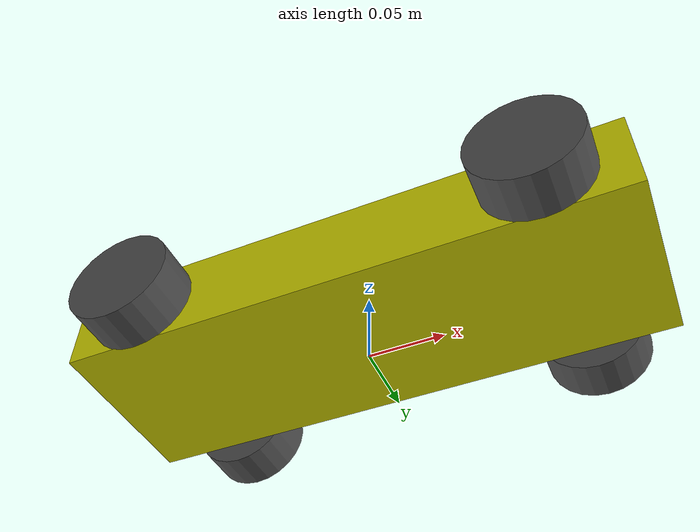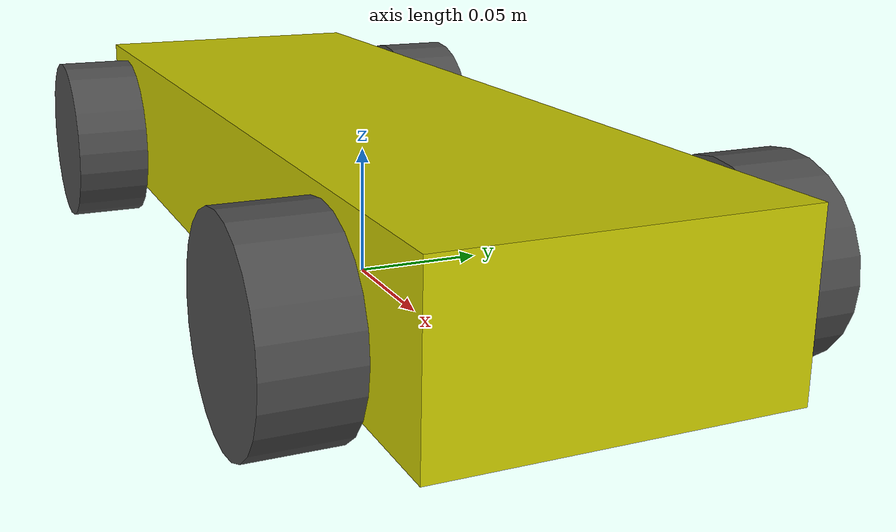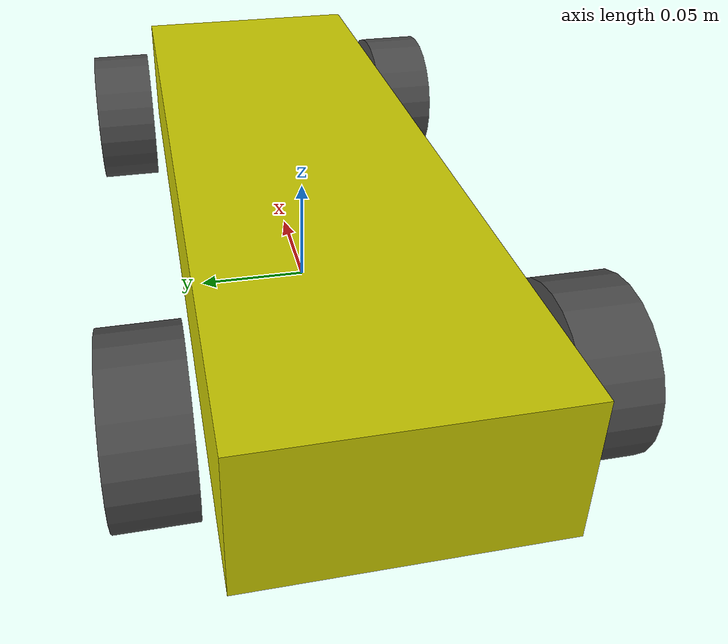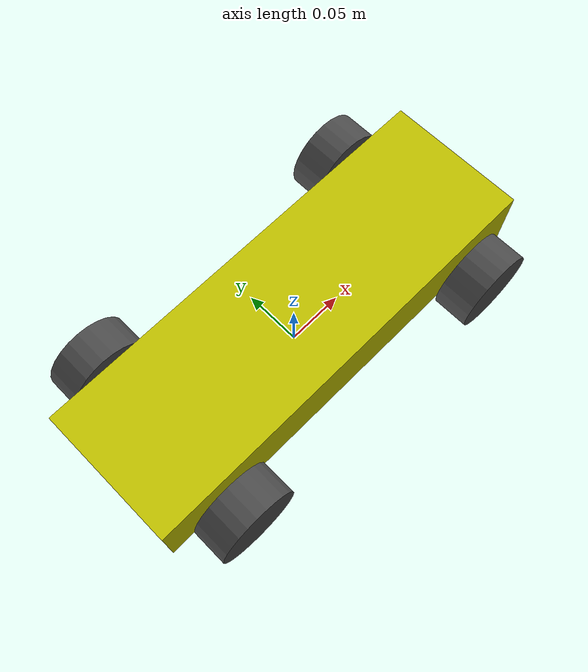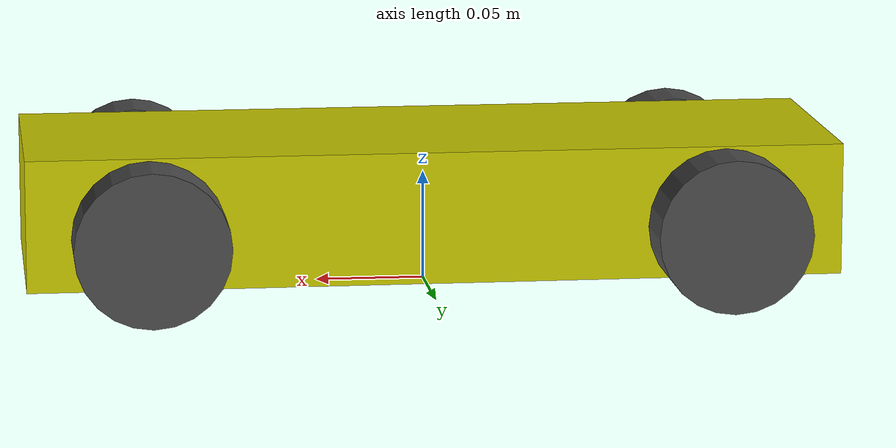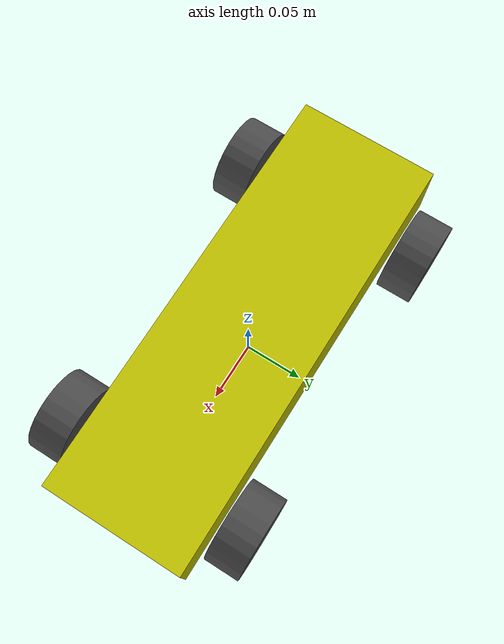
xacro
<?xml version="1.0"?>
<robot name="wheel_robot_base" xmlns:xacro="http://www.ros.org/wiki/xacro">

  <!-- Included URDF/XACRO Files -->
  <xacro:include filename="$(find tutorial2)/urdf/materials.urdf.xacro" />
  <xacro:include filename="$(find tutorial2)/urdf/wheel.urdf.xacro" />

  <!-- PROPERTY LIST -->
  <!--All units in m-kg-s-radians unit system -->
  <property name="M_PI" value="3.1415926535897931" />

  <!-- Main Body-base -->
  <property name="base_x_size" value="0.37" />
  <property name="base_y_size" value="0.12" />
  <property name="base_z_size" value="0.06" />
  <property name="base_mass" value="30.0" /> <!-- in kg-->

  <!--Inertial macros for the box and cylinder. Units are kg*m^2-->
  <macro name="box_inertia" params="m x y z">
    <inertia  ixx="${m*(y*y+z*z)/12}" ixy = "0" ixz = "0"
              iyy="${m*(x*x+z*z)/12}" iyz = "0"
              izz="${m*(x*x+z*z)/12}" />
  </macro>

  <!-- BASE-FOOTPRINT -->
  <!-- base_footprint is a fictitious link(frame) that is on the ground right below base_link origin -->
  <link name="base_footprint">
    <visual>
        <origin xyz="0 0 0" rpy="0 0 0" />
        <geometry>
            <box size="0.001 0.001 0.001" />
        </geometry>
    </visual>
  </link>

  <gazebo reference="base_footprint">
    <turnGravityOff>false</turnGravityOff>
  </gazebo>

  <!-- BASE-LINK -->
  <!--Actual body/chassis of the robot-->
  <link name="base_link">
    <inertial>
      <mass value="30.0" />
      <origin xyz="0 0 0" />
      <!--The 3x3 rotational inertia matrix. -->
      <box_inertia  m="${base_mass}" x="${base_x_size}" y="${base_y_size}" z="${base_z_size}"/>
    </inertial>
    <visual>
      <origin xyz="0 0 0" rpy="0 0 0" />
      <geometry>
        <box size="${base_x_size} ${base_y_size} ${base_z_size}"/>
      </geometry>
      <material name="Yellow" />
    </visual>
    <collision>
      <origin xyz="0 0 0" rpy="0 0 0 " />
      <geometry>
        <box size="${base_x_size} ${base_y_size} ${base_z_size}"/>
      </geometry>
    </collision>
  </link>
  <gazebo reference="base_link">
    <material>Gazebo/Yellow</material>
    <turnGravityOff>false</turnGravityOff>
  </gazebo>

  <joint name="base_footprint_joint" type="fixed">
    <origin xyz="0 0 0.04" rpy="0 0 0" />
    <parent link="base_footprint"/>
    <child link="base_link" />
  </joint>

 <!--wheels-->
  <wheel fb="front" lr="right" parent="base_link" translateX="1" translateY="-1" flipY="-1"/>
  <wheel fb="front" lr="left" parent="base_link" translateX="1" translateY="1" flipY="-1"/>
  <wheel fb="rear" lr="right" parent="base_link" translateX="-1" translateY="-1" flipY="-1"/>
  <wheel fb="rear" lr="left" parent="base_link" translateX="-1" translateY="1" flipY="-1"/>

  <gazebo>
    <plugin name="skid_steer_drive_controller" filename="libgazebo_ros_skid_steer_drive.so">
      <alwaysOn>true</alwaysOn>
      <updateRate>100.0</updateRate>
      <leftFrontJoint>front_left_wheel_joint</leftFrontJoint>
      <rightFrontJoint>front_right_wheel_joint</rightFrontJoint>
      <leftRearJoint>rear_left_wheel_joint</leftRearJoint>
      <rightRearJoint>rear_right_wheel_joint</rightRearJoint>
      <wheelSeparation>0.16</wheelSeparation>
      <wheelDiameter>0.07</wheelDiameter>
      <torque>100</torque>
      <broadcastTF>1</broadcastTF>
      <odometryFrame>map</odometryFrame>
      <commandTopic>cmd_vel</commandTopic>
      <odometryTopic>odom</odometryTopic>
      <robotBaseFrame>base_footprint</robotBaseFrame>
    </plugin>
    <plugin name="gazebo_ros_control" filename="libgazebo_ros_control.so" />
  </gazebo>

</robot>

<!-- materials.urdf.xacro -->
<robot>
  <material name="Black">
    <color rgba="0.0 0.0 0.0 1.0"/>
  </material>

  <material name="Blue">
    <color rgba="0.0 0.0 0.8 1.0"/>
  </material>

  <material name="Green">
    <color rgba="0.0 0.8 0.0 1.0"/>
  </material>

  <material name="Gray">
    <color rgba="0.7 0.7 0.7 1.0"/>
  </material>

  <material name="DarkGray">
    <color rgba="0.3 0.3 0.3 1.0"/>
  </material>

  <material name="Red">
    <color rgba="0.8 0.0 0.0 1.0"/>
  </material>

  <material name="White">
    <color rgba="1.0 1.0 1.0 1.0"/>
  </material>

  <material name="Yellow">
    <color rgba="0.8 0.8 0.0 1.0"/>
  </material>
</robot>

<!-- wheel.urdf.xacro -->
<robot name="wheel" xmlns:xacro="http://www.ros.org/wiki/xacro">

  <!-- Wheels -->
  <property name="wheel_radius" value="0.035" />
  <property name="wheel_height" value="0.03" />
  <property name="wheel_mass" value="1.0" /> <!-- in kg-->

  <property name="base_x_origin_to_wheel_origin" value="0.13" />
  <property name="base_y_origin_to_wheel_origin" value="0.08" />
  <property name="base_z_origin_to_wheel_origin" value="-0.005" />

  <macro name="cylinder_inertia" params="m r h">
    <inertia  ixx="${m*(3*r*r+h*h)/12}" ixy = "0" ixz = "0"
              iyy="${m*(3*r*r+h*h)/12}" iyz = "0"
              izz="${m*r*r/2}" />
  </macro>

  <xacro:macro name="wheel" params="fb lr parent translateX translateY flipY"> <!--fb : front, back ; lr: left, right -->
    <link name="${fb}_${lr}_wheel">
      <visual>
        <origin xyz="0 0 0" rpy="${flipY*M_PI/2} 0 0" />
        <geometry>
          <cylinder length="${wheel_height}" radius="${wheel_radius}" />
        </geometry>
        <material name="DarkGray" />
      </visual>
      <collision>
        <origin xyz="0 0 0" rpy="${flipY*M_PI/2} 0 0" />
        <geometry>
          <cylinder length="${wheel_height}" radius="${wheel_radius}" />
        </geometry>
      </collision>
      <inertial>
        <mass value="${wheel_mass}" />
        <origin xyz="0 0 0" />
        <cylinder_inertia  m="${wheel_mass}" r="${wheel_radius}" h="${wheel_height}" />
      </inertial>
    </link>

    <gazebo reference="${fb}_${lr}_wheel">
      <mu1 value="1.0"/>
      <mu2 value="1.0"/>
      <kp  value="10000000.0" />
      <kd  value="1.0" />
      <fdir1 value="1 0 0"/>
      <material>Gazebo/Grey</material>
      <turnGravityOff>false</turnGravityOff>
    </gazebo>

    <joint name="${fb}_${lr}_wheel_joint" type="continuous">
      <parent link="${parent}"/>
      <child link="${fb}_${lr}_wheel"/>
      <origin xyz="${translateX * base_x_origin_to_wheel_origin} ${translateY * base_y_origin_to_wheel_origin} ${base_z_origin_to_wheel_origin}" rpy="0 0 0" />
      <axis xyz="0 1 0" rpy="0 0 0" />
      <limit effort="100" velocity="100"/>
      <joint_properties damping="0.0" friction="0.0"/>
    </joint>

    <!-- Transmission is important to link the joints and the controller -->
    <transmission name="${fb}_${lr}_wheel_joint_trans">
      <type>transmission_interface/SimpleTransmission</type>
      <joint name="${fb}_${lr}_wheel_joint">
        <hardwareInterface>EffortJointInterface</hardwareInterface>
      </joint>
      <actuator name="${fb}_${lr}_wheel_joint_motor">
        <hardwareInterface>EffortJointInterface</hardwareInterface>
        <mechanicalReduction>1</mechanicalReduction>
      </actuator>
    </transmission>

  </xacro:macro>
</robot>
